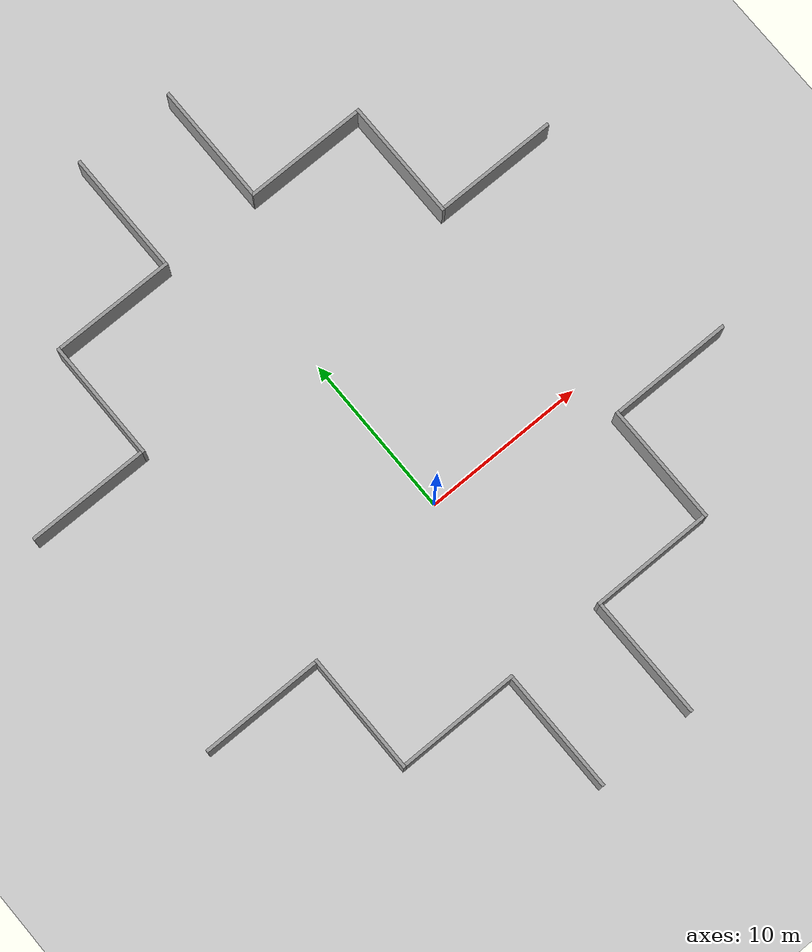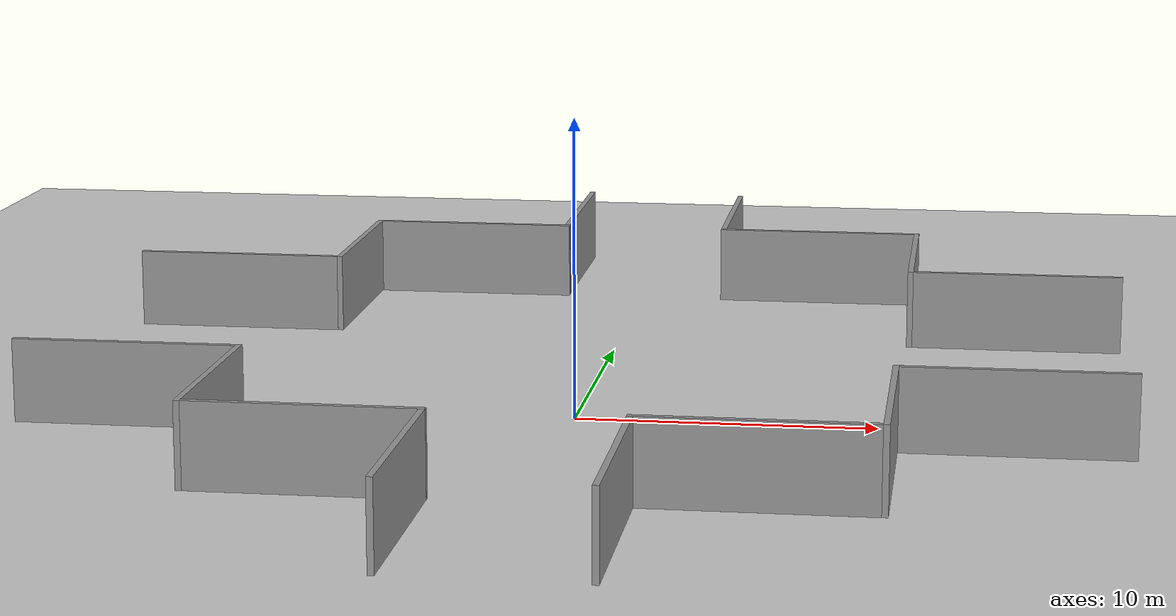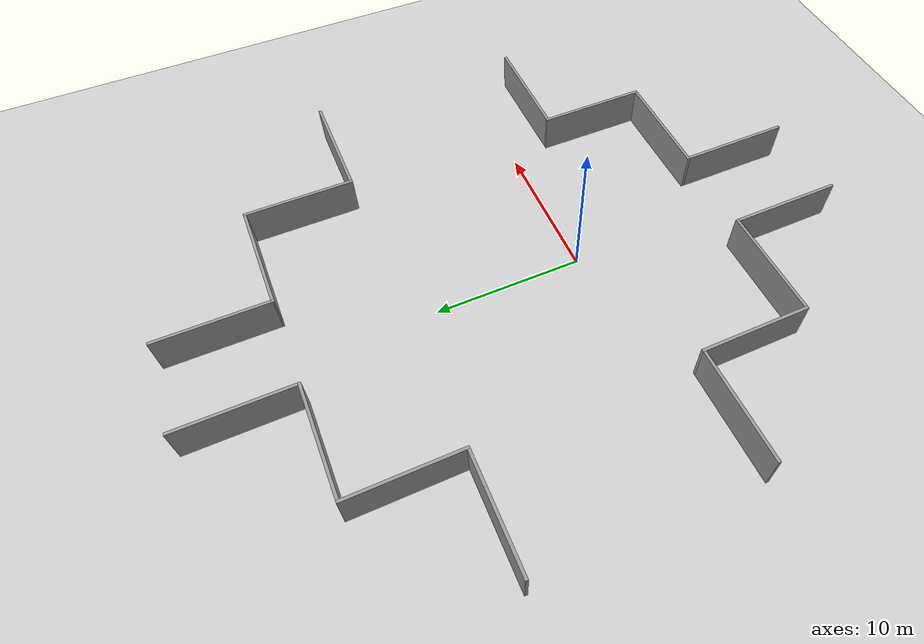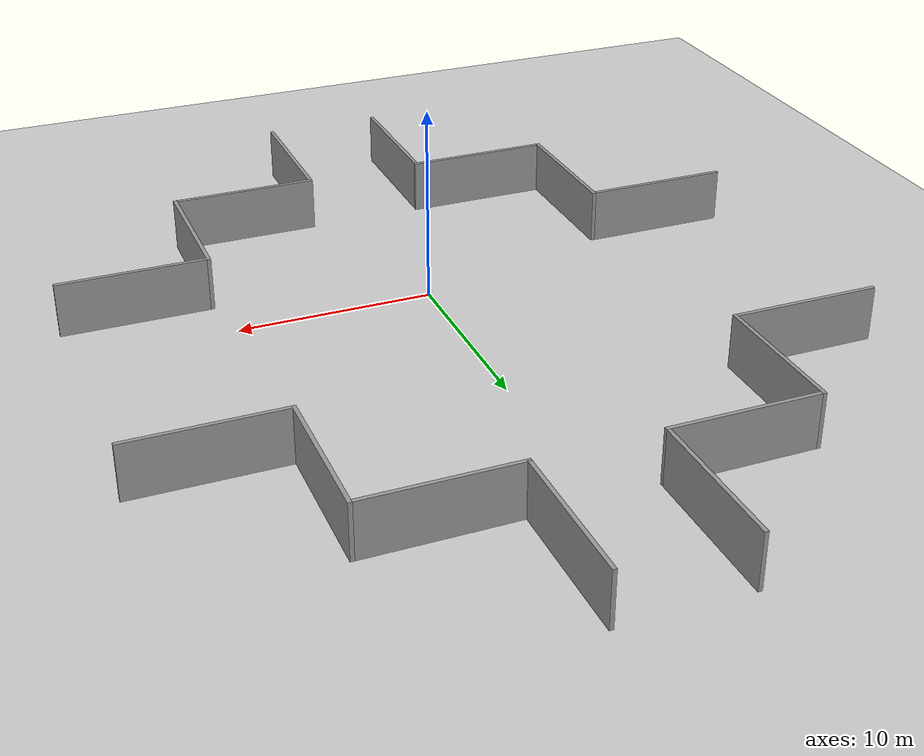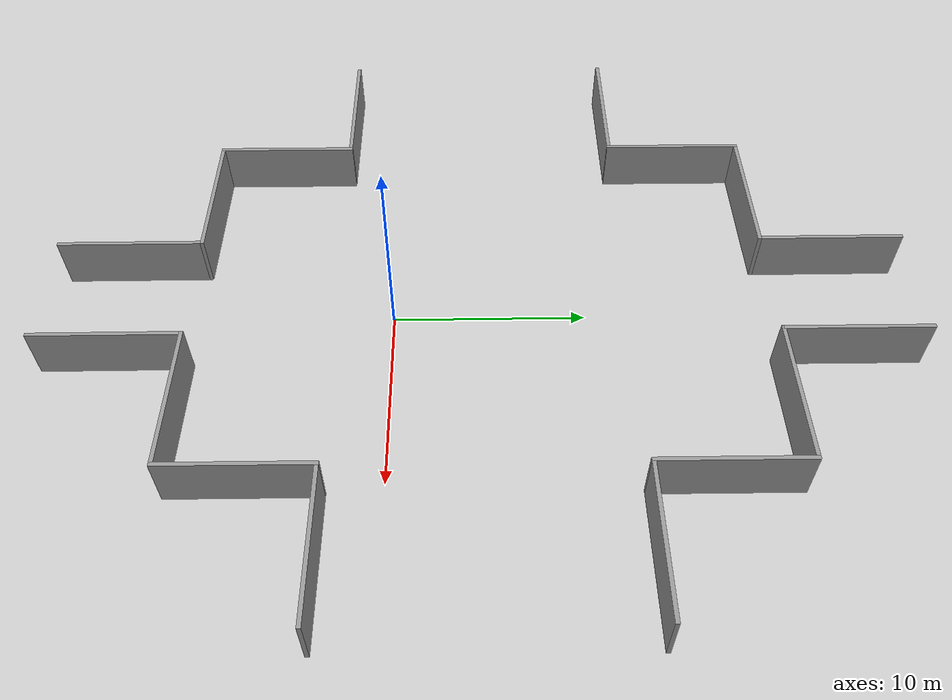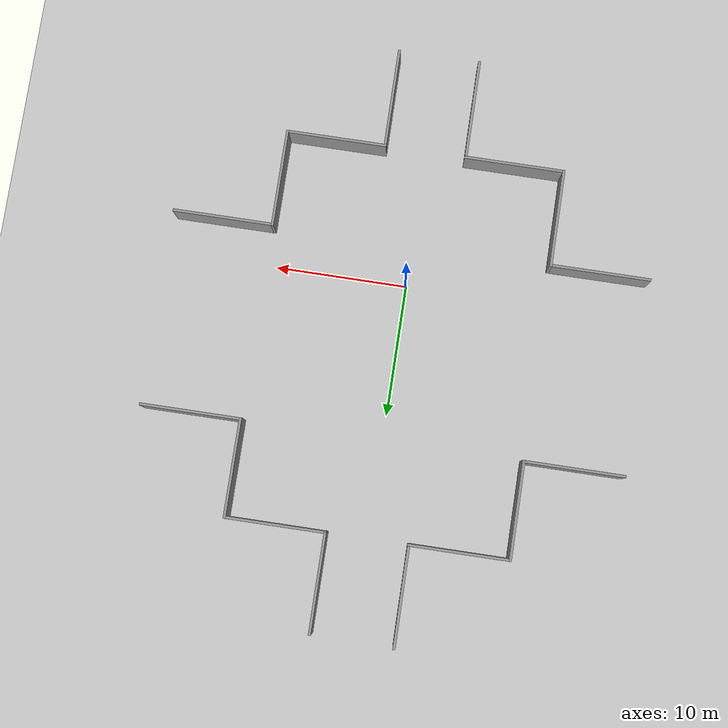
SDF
<sdf version="1.6">
 <world name="default">
  <light name="sun" type="directional">
   <pose>0 0 10 0 -0 0</pose>
   <diffuse>0.8 0.8 0.8 1</diffuse>
   <specular>0.1 0.1 0.1 1</specular>
   <attenuation>
    <range>1000</range>
    <constant>0.9</constant>
    <linear>0.01</linear>
    <quadratic>0.001</quadratic>
   </attenuation>
   <direction>-0.5 0.5 -1</direction>
  </light>
  <model name="ground_plane">
   <static>1</static>
   <link name="link">
    <collision name="collision">
     <geometry><plane><normal>0 0 1</normal><size>100 100</size></plane></geometry>
     <surface><friction><ode><mu>100</mu><mu2>50</mu2></ode></friction></surface>
    </collision>
    <visual name="visual">
     <cast_shadows>0</cast_shadows>
     <geometry><plane><normal>0 0 1</normal><size>100 100</size></plane></geometry>
     <material>
      <script><uri>file://media/materials/scripts/gazebo.material</uri><name>Gazebo/Grey</name></script>
     </material>
    </visual>
   </link>
  </model>
  <gravity>0 0 -9.8</gravity>
  <magnetic_field>6e-06 2.3e-05 -4.2e-05</magnetic_field>
  <atmosphere type="adiabatic"/>
  <physics name="default_physics" default="0" type="ode">
   <max_step_size>0.001</max_step_size>
   <real_time_factor>1</real_time_factor>
   <real_time_update_rate>1000</real_time_update_rate>
  </physics>
  <scene><ambient>0.4 0.4 0.4 1</ambient><background>0.7 0.7 0.7 1</background><shadows>1</shadows></scene>
  <spherical_coordinates>
   <surface_model>EARTH_WGS84</surface_model>
   <latitude_deg>0</latitude_deg>
   <longitude_deg>0</longitude_deg>
   <elevation>0</elevation>
   <heading_deg>0</heading_deg>
  </spherical_coordinates>
  <model name="grey_wall">
   <static>1</static>
   <link name="link">
    <pose>0 0 1.4 0 -0 0</pose>
    <collision name="collision"><geometry><box><size>7.5 0.2 2.8</size></box></geometry></collision>
    <visual name="visual">
     <cast_shadows>0</cast_shadows>
     <geometry><box><size>7.5 0.2 2.8</size></box></geometry>
     <material>
      <script>
       <uri>model://grey_wall/materials/scripts</uri>
       <uri>model://grey_wall/materials/textures</uri>
       <name>vrc/grey_wall</name>
      </script>
     </material>
    </visual>
   </link>
   <pose>-6.75 -10.1 0 0 -0 0</pose>
  </model>
  <model name="grey_wall_0">
   <static>1</static>
   <link name="link">
    <pose>0 0 1.4 0 -0 0</pose>
    <collision name="collision"><geometry><box><size>7.5 0.2 2.8</size></box></geometry></collision>
    <visual name="visual">
     <cast_shadows>0</cast_shadows>
     <geometry><box><size>7.5 0.2 2.8</size></box></geometry>
     <material>
      <script>
       <uri>model://grey_wall/materials/scripts</uri>
       <uri>model://grey_wall/materials/textures</uri>
       <name>vrc/grey_wall</name>
      </script>
     </material>
    </visual>
   </link>
   <pose>6.75 -10.1 0 0 -0 0</pose>
  </model>
  <model name="grey_wall_0_clone">
   <static>1</static>
   <link name="link">
    <pose>0 0 1.4 0 -0 0</pose>
    <collision name="collision"><geometry><box><size>7.5 0.2 2.8</size></box></geometry></collision>
    <visual name="visual">
     <cast_shadows>0</cast_shadows>
     <geometry><box><size>7.5 0.2 2.8</size></box></geometry>
     <material>
      <script>
       <uri>model://grey_wall/materials/scripts</uri>
       <uri>model://grey_wall/materials/textures</uri>
       <name>vrc/grey_wall</name>
      </script>
     </material>
    </visual>
   </link>
   <pose>10.6 -6.45 0 0 -0 1.57079</pose>
  </model>
  <model name="grey_wall_0_clone_0">
   <static>1</static>
   <link name="link">
    <pose>0 0 1.4 0 -0 0</pose>
    <collision name="collision"><geometry><box><size>7.5 0.2 2.8</size></box></geometry></collision>
    <visual name="visual">
     <cast_shadows>0</cast_shadows>
     <geometry><box><size>7.5 0.2 2.8</size></box></geometry>
     <material>
      <script>
       <uri>model://grey_wall/materials/scripts</uri>
       <uri>model://grey_wall/materials/textures</uri>
       <name>vrc/grey_wall</name>
      </script>
     </material>
    </visual>
   </link>
   <pose>6.75 19.35 0 0 -0 0</pose>
  </model>
  <model name="grey_wall_0_clone_2">
   <static>1</static>
   <link name="link">
    <pose>0 0 1.4 0 -0 0</pose>
    <collision name="collision"><geometry><box><size>7.5 0.2 2.8</size></box></geometry></collision>
    <visual name="visual">
     <cast_shadows>0</cast_shadows>
     <geometry><box><size>7.5 0.2 2.8</size></box></geometry>
     <material>
      <script>
       <uri>model://grey_wall/materials/scripts</uri>
       <uri>model://grey_wall/materials/textures</uri>
       <name>vrc/grey_wall</name>
      </script>
     </material>
    </visual>
   </link>
   <pose>-6.75 19.35 0 0 -0 0</pose>
  </model>
  <model name="grey_wall_0_clone_clone_clone_clone">
   <static>1</static>
   <link name="link">
    <pose>0 0 1.4 0 -0 0</pose>
    <collision name="collision"><geometry><box><size>7.5 0.2 2.8</size></box></geometry></collision>
    <visual name="visual">
     <cast_shadows>0</cast_shadows>
     <geometry><box><size>7.5 0.2 2.8</size></box></geometry>
     <material>
      <script>
       <uri>model://grey_wall/materials/scripts</uri>
       <uri>model://grey_wall/materials/textures</uri>
       <name>vrc/grey_wall</name>
      </script>
     </material>
    </visual>
   </link>
   <pose>-10.6 -6.45 0 0 -0 1.57079</pose>
  </model>
  <model name="grey_wall_0_clone_clone_clone_clone_1_clone">
   <static>1</static>
   <link name="link">
    <pose>0 0 1.4 0 -0 0</pose>
    <collision name="collision"><geometry><box><size>7.5 0.2 2.8</size></box></geometry></collision>
    <visual name="visual">
     <cast_shadows>0</cast_shadows>
     <geometry><box><size>7.5 0.2 2.8</size></box></geometry>
     <material>
      <script>
       <uri>model://grey_wall/materials/scripts</uri>
       <uri>model://grey_wall/materials/textures</uri>
       <name>vrc/grey_wall</name>
      </script>
     </material>
    </visual>
   </link>
   <pose>-10.6 15.7 0 0 -0 1.57079</pose>
  </model>
  <model name="grey_wall_0_clone_clone_clone_clone_2">
   <static>1</static>
   <link name="link">
    <pose>0 0 1.4 0 -0 0</pose>
    <collision name="collision"><geometry><box><size>7.5 0.2 2.8</size></box></geometry></collision>
    <visual name="visual">
     <cast_shadows>0</cast_shadows>
     <geometry><box><size>7.5 0.2 2.8</size></box></geometry>
     <material>
      <script>
       <uri>model://grey_wall/materials/scripts</uri>
       <uri>model://grey_wall/materials/textures</uri>
       <name>vrc/grey_wall</name>
      </script>
     </material>
    </visual>
   </link>
   <pose>10.6 15.7 0 0 -0 1.57079</pose>
  </model>
  <model name="grey_wall_0_clone_clone_clone_clone_0_clone">
   <static>1</static>
   <link name="link">
    <pose>0 0 1.4 0 -0 0</pose>
    <collision name="collision"><geometry><box><size>7.5 0.2 2.8</size></box></geometry></collision>
    <visual name="visual">
     <cast_shadows>0</cast_shadows>
     <geometry><box><size>7.5 0.2 2.8</size></box></geometry>
     <material>
      <script>
       <uri>model://grey_wall/materials/scripts</uri>
       <uri>model://grey_wall/materials/textures</uri>
       <name>vrc/grey_wall</name>
      </script>
     </material>
    </visual>
   </link>
   <pose>-3.11 23.2 0 0 -0 1.57402</pose>
  </model>
  <model name="grey_wall_0_clone_clone_clone_clone_0_clone_0">
   <static>1</static>
   <link name="link">
    <pose>0 0 1.4 0 -0 0</pose>
    <collision name="collision"><geometry><box><size>7.5 0.2 2.8</size></box></geometry></collision>
    <visual name="visual">
     <cast_shadows>0</cast_shadows>
     <geometry><box><size>7.5 0.2 2.8</size></box></geometry>
     <material>
      <script>
       <uri>model://grey_wall/materials/scripts</uri>
       <uri>model://grey_wall/materials/textures</uri>
       <name>vrc/grey_wall</name>
      </script>
     </material>
    </visual>
   </link>
   <pose>3.1 23.1 0 0 -0 1.57079</pose>
  </model>
  <model name="grey_wall_clone">
   <static>1</static>
   <link name="link">
    <pose>0 0 1.4 0 -0 0</pose>
    <collision name="collision"><geometry><box><size>7.5 0.2 2.8</size></box></geometry></collision>
    <visual name="visual">
     <cast_shadows>0</cast_shadows>
     <geometry><box><size>7.5 0.2 2.8</size></box></geometry>
     <material>
      <script>
       <uri>model://grey_wall/materials/scripts</uri>
       <uri>model://grey_wall/materials/textures</uri>
       <name>vrc/grey_wall</name>
      </script>
     </material>
    </visual>
   </link>
   <pose>-14.45 -2.8 0 0 -0 0</pose>
  </model>
  <model name="grey_wall_clone_0">
   <static>1</static>
   <link name="link">
    <pose>0 0 1.4 0 -0 0</pose>
    <collision name="collision"><geometry><box><size>7.5 0.2 2.8</size></box></geometry></collision>
    <visual name="visual">
     <cast_shadows>0</cast_shadows>
     <geometry><box><size>7.5 0.2 2.8</size></box></geometry>
     <material>
      <script>
       <uri>model://grey_wall/materials/scripts</uri>
       <uri>model://grey_wall/materials/textures</uri>
       <name>vrc/grey_wall</name>
      </script>
     </material>
    </visual>
   </link>
   <pose>-14.45 12.05 0 0 -0 0</pose>
  </model>
  <model name="grey_wall_clone_clone">
   <static>1</static>
   <link name="link">
    <pose>0 0 1.4 0 -0 0</pose>
    <collision name="collision"><geometry><box><size>7.5 0.2 2.8</size></box></geometry></collision>
    <visual name="visual">
     <cast_shadows>0</cast_shadows>
     <geometry><box><size>7.5 0.2 2.8</size></box></geometry>
     <material>
      <script>
       <uri>model://grey_wall/materials/scripts</uri>
       <uri>model://grey_wall/materials/textures</uri>
       <name>vrc/grey_wall</name>
      </script>
     </material>
    </visual>
   </link>
   <pose>14.45 -2.8 0 0 -0 0</pose>
  </model>
  <model name="grey_wall_clone_clone_0">
   <static>1</static>
   <link name="link">
    <pose>0 0 1.4 0 -0 0</pose>
    <collision name="collision"><geometry><box><size>7.5 0.2 2.8</size></box></geometry></collision>
    <visual name="visual">
     <cast_shadows>0</cast_shadows>
     <geometry><box><size>7.5 0.2 2.8</size></box></geometry>
     <material>
      <script>
       <uri>model://grey_wall/materials/scripts</uri>
       <uri>model://grey_wall/materials/textures</uri>
       <name>vrc/grey_wall</name>
      </script>
     </material>
    </visual>
   </link>
   <pose>14.45 12.05 0 0 -0 0</pose>
  </model>
  <model name="ball_bearing">
   <link name="link">
    <pose>0 0 0.003 0 -0 0</pose>
    <inertial>
     <mass>0.0011</mass>
     <inertia>
      <ixx>3.96e-09</ixx>
      <ixy>0</ixy>
      <ixz>0</ixz>
      <iyy>3.96e-09</iyy>
      <iyz>0</iyz>
      <izz>3.96e-09</izz>
     </inertia>
    </inertial>
    <collision name="collision">
     <geometry><sphere><radius>0.003</radius></sphere></geometry>
     <surface>
      <contact>
       <poissons_ratio>0.305</poissons_ratio>
       <elastic_modulus>2e+11</elastic_modulus>
       <ode><kp>100000</kp><kd>100</kd><max_vel>100</max_vel><min_depth>0.001</min_depth></ode>
      </contact>
      <friction>
       <torsional>
        <coefficient>1</coefficient>
        <use_patch_radius>0</use_patch_radius>
        <surface_radius>0.01</surface_radius>
       </torsional>
      </friction>
     </surface>
    </collision>
    <visual name="visual">
     <geometry><sphere><radius>0.003</radius></sphere></geometry>
     <material>
      <script><uri>file://media/materials/scripts/gazebo.material</uri><name>Gazebo/Grey</name></script>
     </material>
    </visual>
    <velocity_decay><linear>0</linear><angular>0.005</angular></velocity_decay>
   </link>
   <pose>-5.88015 -3.98956 -0.001 0 -0 0</pose>
  </model>
  <model name="grey_wall_0_clone_clone_clone_clone_clone">
   <static>1</static>
   <link name="link">
    <pose>0 0 1.4 0 -0 0</pose>
    <collision name="collision"><geometry><box><size>7.5 0.2 2.8</size></box></geometry></collision>
    <visual name="visual">
     <cast_shadows>0</cast_shadows>
     <geometry><box><size>7.5 0.2 2.8</size></box></geometry>
     <material>
      <script>
       <uri>model://grey_wall/materials/scripts</uri>
       <uri>model://grey_wall/materials/textures</uri>
       <name>vrc/grey_wall</name>
      </script>
     </material>
    </visual>
   </link>
   <pose>-3.09 -13.95 0 0 -0 1.57402</pose>
  </model>
  <model name="grey_wall_0_clone_clone_clone_clone_clone_0">
   <static>1</static>
   <link name="link">
    <pose>0 0 1.4 0 -0 0</pose>
    <collision name="collision"><geometry><box><size>7.5 0.2 2.8</size></box></geometry></collision>
    <visual name="visual">
     <cast_shadows>0</cast_shadows>
     <geometry><box><size>7.5 0.2 2.8</size></box></geometry>
     <material>
      <script>
       <uri>model://grey_wall/materials/scripts</uri>
       <uri>model://grey_wall/materials/textures</uri>
       <name>vrc/grey_wall</name>
      </script>
     </material>
    </visual>
   </link>
   <pose>3.11 -13.95 0 0 -0 1.57402</pose>
  </model>
  <audio><device>default</device></audio>
 </world>
</sdf>
